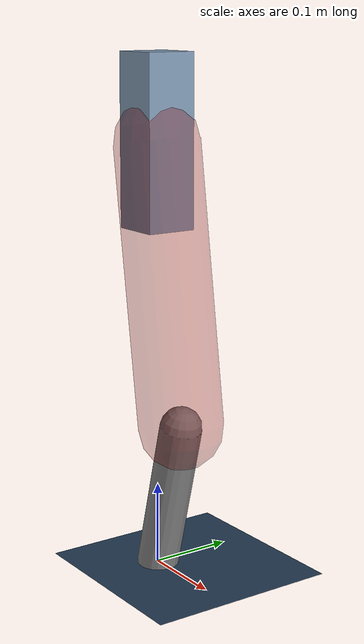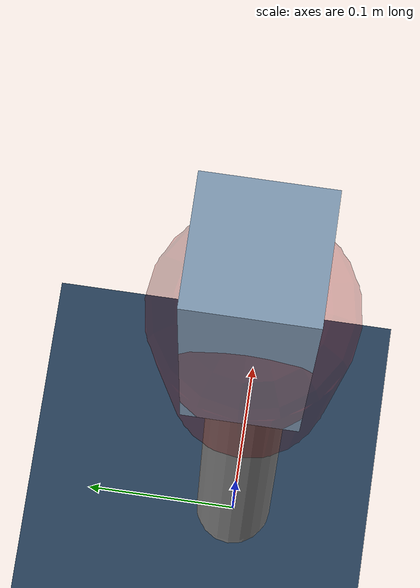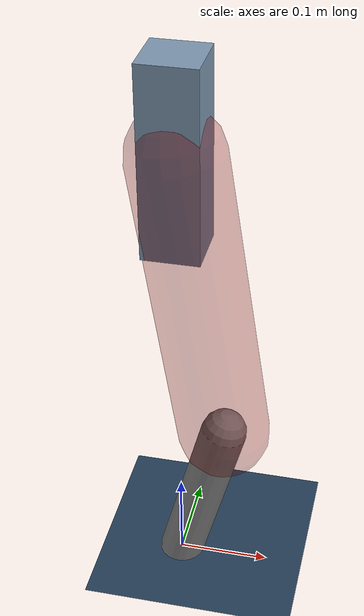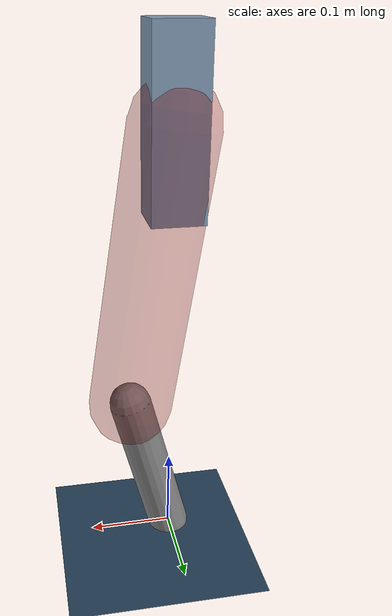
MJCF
<mujoco model="Hopper2D">
	<compiler inertiafromgeom="true" angle="radian" />
	<option timestep="0.001" integrator="implicit" cone="elliptic" solver="Newton" tolerance="1e-10" />

	<default>
		<geom contype="1" conaffinity="1" condim="3" friction="2 0.005 0.0001" solref="0.005 1" />
		<joint limited="true" damping="0.1" />
	</default>

	<asset>
		<texture name="skybox" type="skybox" builtin="gradient" rgb1=".4 .6 .8" rgb2="0 0 0" width="800" height="800" />
		<texture name="grid" type="2d" builtin="checker" rgb1=".1 .2 .3" rgb2=".2 .3 .4" width="300" height="300" mark="edge" markrgb=".2 .3 .4" />
		<material name="ground" texture="grid" texrepeat="1 1" texuniform="true" reflectance="0.1" />
		<material name="leg" rgba="0.5 0.6 0.7 1" />
	</asset>

	<worldbody>

		<geom name="floor" type="plane" size="5 5 0.25" material="ground" />

		<light directional="false" diffuse="0.8 0.8 0.8" specular="0.3 0.3 0.3" pos="0 0 2" dir="0 0 -1" />
		<light mode="targetbodycom" target="base" directional="false" diffuse="0.8 0.8 0.8" specular="0.3 0.3 0.3" pos="0 0 2" dir="0 0 -1" />

		<camera name="fixed" pos="0 -2 1" xyaxes="1 0 0 0 0 1" />
		<camera name="tracking" mode="trackcom" pos="0 -3 1" />

		<body name="root" pos="0 0 0.5126231375295578">
			<joint name="slide_x" type="slide" axis="1 0 0" range="-100 100" />
			<joint name="slide_z" type="slide" axis="0 0 1" range="0 10" />

			<body name="base" pos="0 0 0">
				<geom name="torso" type="box" size="0.03 0.03 0.1" mass="2.972" material="leg" />

				<body name="link1" pos="0 0 0" euler="0 1.422224765864855 0">
					<joint type="hinge" axis="0 -1 0" pos="0 0 0" name="hinge1" limited="true" range="-3.14 3.14" stiffness="0" damping="0.1" />
					<geom name="thigh" type="capsule" fromto="0 0 0 0.3308067610134146 0 0" size="0.05" rgba="0.5 0 0 0.3" mass="1.0730589308375609" />

					<body name="link2" pos="0.3308067610134146 0 0" euler="0 0.406714124143232 0">
						<joint type="hinge" axis="0 -1 0" pos="0 0 0" name="hinge2" limited="true" range="-3.14 3.14" stiffness="0" damping="0.1" />
						<geom name="shank" type="capsule" fromto="0 0 0 0.19181637651614317 0 0" size="0.025" mass="0.39395310121291455" />

					</body>
				</body>
			</body>
		</body>
	</worldbody>

	<actuator>
		<motor name="torque1" joint="hinge1" ctrlrange="-74.1464196321577 74.1464196321577" ctrllimited="true" gear="1" />
		<motor name="torque2" joint="hinge2" ctrlrange="-143.87603320039628 143.87603320039628" ctrllimited="true" gear="1" />
	</actuator>
</mujoco>
